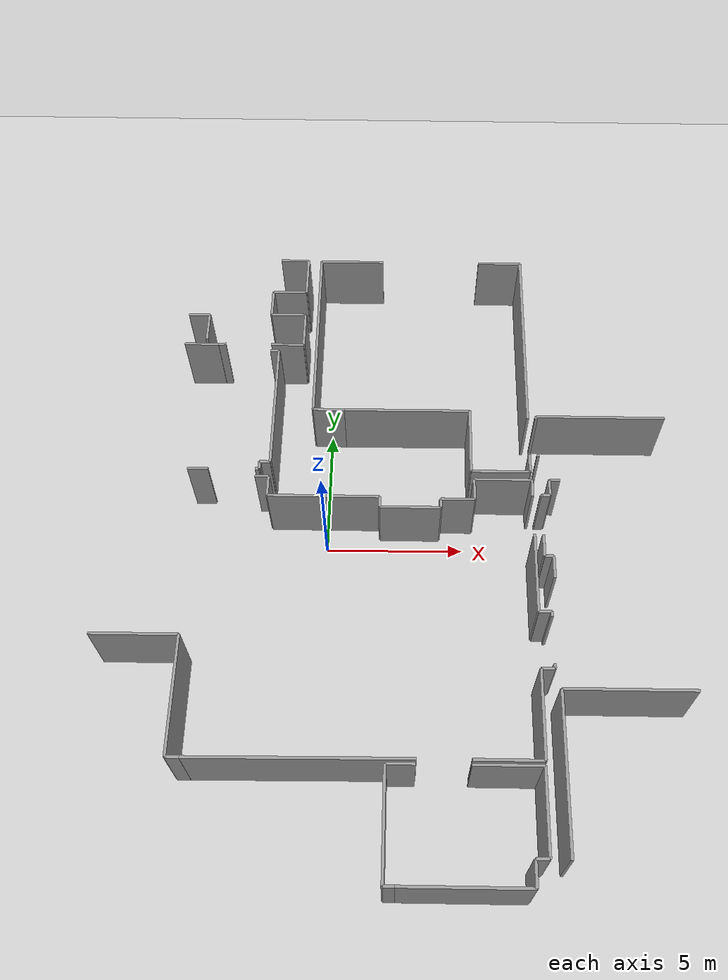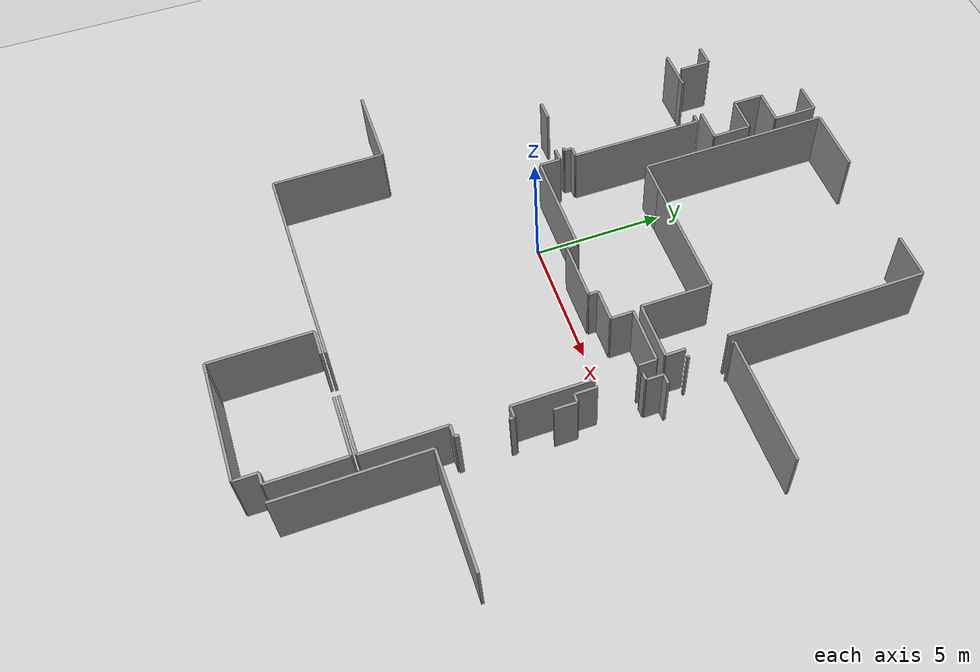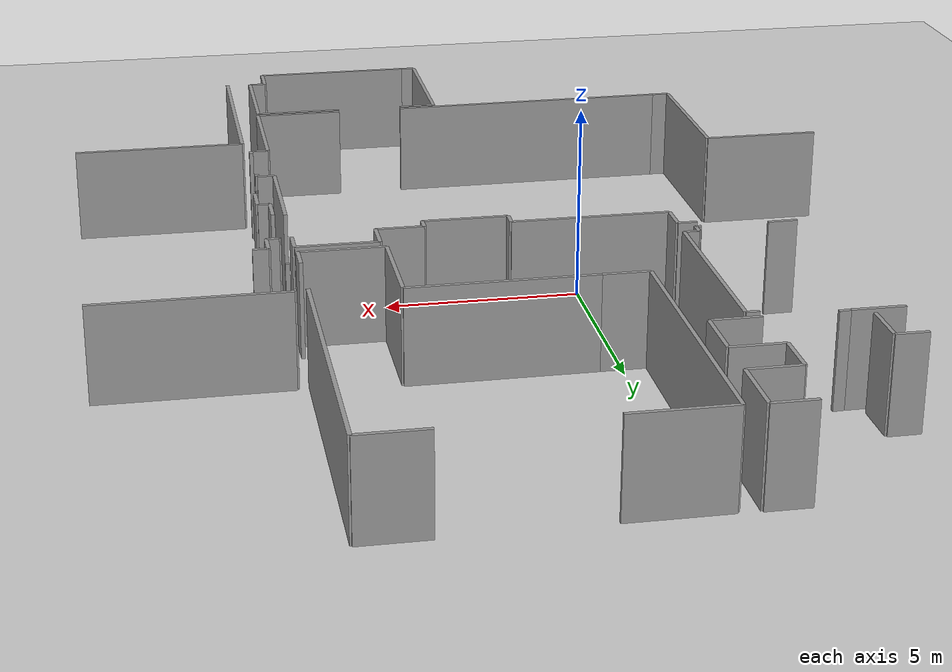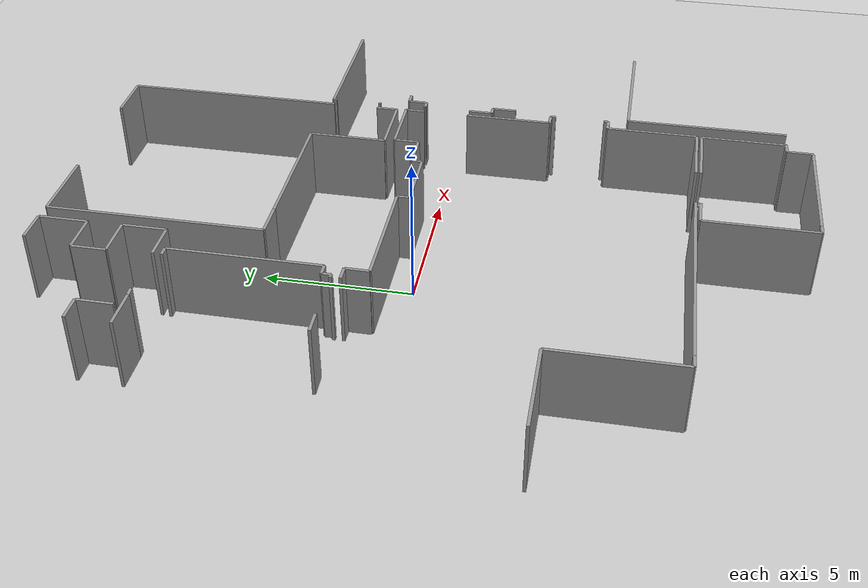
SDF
<sdf version="1.6">
 <world name="default">
  <model name="ground_plane">
   <static>1</static>
   <link name="link">
    <collision name="collision">
     <geometry><plane><normal>0 0 1</normal><size>100 100</size></plane></geometry>
     <surface><friction><ode><mu>100</mu><mu2>50</mu2></ode></friction></surface>
    </collision>
    <visual name="visual">
     <cast_shadows>0</cast_shadows>
     <geometry><plane><normal>0 0 1</normal><size>100 100</size></plane></geometry>
     <material>
      <script><uri>file://media/materials/scripts/gazebo.material</uri><name>Gazebo/Grey</name></script>
     </material>
    </visual>
   </link>
  </model>
  <model name="0510034690_Layout1">
   <static>1</static>
   <link name="Wall_120">
    <collision name="Wall_120_Collision">
     <geometry><box><size>1.31720917495 0.1 2.5</size></box></geometry>
     <pose>0.658604587474 0 1.25 0 0 0</pose>
    </collision>
    <visual name="Wall_120_Visual">
     <pose>0.658604587474 0 1.25 0 0 0</pose>
     <geometry><box><size>1.31720917495 0.1 2.5</size></box></geometry>
     <material>
      <script><uri>file://media/materials/scripts/gazebo.material</uri><name>Gazebo/Grey</name></script>
      <ambient>1 1 1 1</ambient>
     </material>
    </visual>
    <pose>51.6097744046 -5.07282116562 0 0 0 3.14159265359</pose>
   </link>
   <link name="Wall_123">
    <collision name="Wall_123_Collision">
     <geometry><box><size>1.20056344957 0.1 2.5</size></box></geometry>
     <pose>0.600281724785 0 1.25 0 0 0</pose>
    </collision>
    <visual name="Wall_123_Visual">
     <pose>0.600281724785 0 1.25 0 0 0</pose>
     <geometry><box><size>1.20056344957 0.1 2.5</size></box></geometry>
     <material>
      <script><uri>file://media/materials/scripts/gazebo.material</uri><name>Gazebo/Grey</name></script>
      <ambient>1 1 1 1</ambient>
     </material>
    </visual>
    <pose>51.1262017996 -4.81442552614 0 0 0 1.57079632679</pose>
   </link>
   <link name="Wall_124">
    <collision name="Wall_124_Collision">
     <geometry><box><size>0.816900444141 0.1 2.5</size></box></geometry>
     <pose>0.408450222071 0 1.25 0 0 0</pose>
    </collision>
    <visual name="Wall_124_Visual">
     <pose>0.408450222071 0 1.25 0 0 0</pose>
     <geometry><box><size>0.816900444141 0.1 2.5</size></box></geometry>
     <material>
      <script><uri>file://media/materials/scripts/gazebo.material</uri><name>Gazebo/Grey</name></script>
      <ambient>1 1 1 1</ambient>
     </material>
    </visual>
    <pose>51.1262017996 -3.61386207657 0 0 0 3.14159265359</pose>
   </link>
   <link name="Wall_128">
    <collision name="Wall_128_Collision">
     <geometry><box><size>1.10090742767 0.1 2.5</size></box></geometry>
     <pose>0.550453713835 0 1.25 0 0 0</pose>
    </collision>
    <visual name="Wall_128_Visual">
     <pose>0.550453713835 0 1.25 0 0 0</pose>
     <geometry><box><size>1.10090742767 0.1 2.5</size></box></geometry>
     <material>
      <script><uri>file://media/materials/scripts/gazebo.material</uri><name>Gazebo/Grey</name></script>
      <ambient>1 1 1 1</ambient>
     </material>
    </visual>
    <pose>53.8105749493 -0.746152275923 0 0 0 0.0</pose>
   </link>
   <link name="Wall_129">
    <collision name="Wall_129_Collision">
     <geometry><box><size>1.66068012065 0.1 2.5</size></box></geometry>
     <pose>0.830340060326 0 1.25 0 0 0</pose>
    </collision>
    <visual name="Wall_129_Visual">
     <pose>0.830340060326 0 1.25 0 0 0</pose>
     <geometry><box><size>1.66068012065 0.1 2.5</size></box></geometry>
     <material>
      <script><uri>file://media/materials/scripts/gazebo.material</uri><name>Gazebo/Grey</name></script>
      <ambient>1 1 1 1</ambient>
     </material>
    </visual>
    <pose>54.911482377 -0.746152275923 0 0 0 -1.57079632679</pose>
   </link>
   <link name="Wall_130">
    <collision name="Wall_130_Collision">
     <geometry><box><size>1.32304146122 0.1 2.5</size></box></geometry>
     <pose>0.661520730608 0 1.25 0 0 0</pose>
    </collision>
    <visual name="Wall_130_Visual">
     <pose>0.661520730608 0 1.25 0 0 0</pose>
     <geometry><box><size>1.32304146122 0.1 2.5</size></box></geometry>
     <material>
      <script><uri>file://media/materials/scripts/gazebo.material</uri><name>Gazebo/Grey</name></script>
      <ambient>1 1 1 1</ambient>
     </material>
    </visual>
    <pose>54.911482377 -2.40683239658 0 0 0 3.14159265359</pose>
   </link>
   <link name="Wall_131">
    <collision name="Wall_131_Collision">
     <geometry><box><size>1.15999102335 0.1 2.5</size></box></geometry>
     <pose>0.579995511675 0 1.25 0 0 0</pose>
    </collision>
    <visual name="Wall_131_Visual">
     <pose>0.579995511675 0 1.25 0 0 0</pose>
     <geometry><box><size>1.15999102335 0.1 2.5</size></box></geometry>
     <material>
      <script><uri>file://media/materials/scripts/gazebo.material</uri><name>Gazebo/Grey</name></script>
      <ambient>1 1 1 1</ambient>
     </material>
    </visual>
    <pose>53.5884409158 -2.40683239658 0 0 0 -1.57079632679</pose>
   </link>
   <link name="Wall_132">
    <collision name="Wall_132_Collision">
     <geometry><box><size>1.34218657484 0.1 2.5</size></box></geometry>
     <pose>0.671093287419 0 1.25 0 0 0</pose>
    </collision>
    <visual name="Wall_132_Visual">
     <pose>0.671093287419 0 1.25 0 0 0</pose>
     <geometry><box><size>1.34218657484 0.1 2.5</size></box></geometry>
     <material>
      <script><uri>file://media/materials/scripts/gazebo.material</uri><name>Gazebo/Grey</name></script>
      <ambient>1 1 1 1</ambient>
     </material>
    </visual>
    <pose>53.5884409158 -3.56682341993 0 0 0 0.0</pose>
   </link>
   <link name="Wall_133">
    <collision name="Wall_133_Collision">
     <geometry><box><size>1.48596511025 0.1 2.5</size></box></geometry>
     <pose>0.742982555125 0 1.25 0 0 0</pose>
    </collision>
    <visual name="Wall_133_Visual">
     <pose>0.742982555125 0 1.25 0 0 0</pose>
     <geometry><box><size>1.48596511025 0.1 2.5</size></box></geometry>
     <material>
      <script><uri>file://media/materials/scripts/gazebo.material</uri><name>Gazebo/Grey</name></script>
      <ambient>1 1 1 1</ambient>
     </material>
    </visual>
    <pose>54.9306274906 -3.56682341993 0 0 0 -1.57079632679</pose>
   </link>
   <link name="Wall_134">
    <collision name="Wall_134_Collision">
     <geometry><box><size>1.25584338029 0.1 2.5</size></box></geometry>
     <pose>0.627921690146 0 1.25 0 0 0</pose>
    </collision>
    <visual name="Wall_134_Visual">
     <pose>0.627921690146 0 1.25 0 0 0</pose>
     <geometry><box><size>1.25584338029 0.1 2.5</size></box></geometry>
     <material>
      <script><uri>file://media/materials/scripts/gazebo.material</uri><name>Gazebo/Grey</name></script>
      <ambient>1 1 1 1</ambient>
     </material>
    </visual>
    <pose>54.9306274906 -5.05278853018 0 0 0 3.14159265359</pose>
   </link>
   <link name="Wall_135">
    <collision name="Wall_135_Collision">
     <geometry><box><size>0.287748085083 0.1 2.5</size></box></geometry>
     <pose>0.143874042541 0 1.25 0 0 0</pose>
    </collision>
    <visual name="Wall_135_Visual">
     <pose>0.143874042541 0 1.25 0 0 0</pose>
     <geometry><box><size>0.287748085083 0.1 2.5</size></box></geometry>
     <material>
      <script><uri>file://media/materials/scripts/gazebo.material</uri><name>Gazebo/Grey</name></script>
      <ambient>1 1 1 1</ambient>
     </material>
    </visual>
    <pose>51.8968243201 -5.05278853018 0 0 0 -3.0719176354</pose>
   </link>
   <link name="Wall_141">
    <collision name="Wall_141_Collision">
     <geometry><box><size>0.333327839151 0.1 2.5</size></box></geometry>
     <pose>0.166663919575 0 1.25 0 0 0</pose>
    </collision>
    <visual name="Wall_141_Visual">
     <pose>0.166663919575 0 1.25 0 0 0</pose>
     <geometry><box><size>0.333327839151 0.1 2.5</size></box></geometry>
     <material>
      <script><uri>file://media/materials/scripts/gazebo.material</uri><name>Gazebo/Grey</name></script>
      <ambient>1 1 1 1</ambient>
     </material>
    </visual>
    <pose>53.6529764312 -5.35454595017 0 0 0 0.0</pose>
   </link>
   <link name="Wall_142">
    <collision name="Wall_142_Collision">
     <geometry><box><size>5.09716462135 0.1 2.5</size></box></geometry>
     <pose>2.54858231068 0 1.25 0 0 0</pose>
    </collision>
    <visual name="Wall_142_Visual">
     <pose>2.54858231068 0 1.25 0 0 0</pose>
     <geometry><box><size>5.09716462135 0.1 2.5</size></box></geometry>
     <material>
      <script><uri>file://media/materials/scripts/gazebo.material</uri><name>Gazebo/Grey</name></script>
      <ambient>1 1 1 1</ambient>
     </material>
    </visual>
    <pose>53.9863042704 -5.35454595017 0 0 0 -1.57079632679</pose>
   </link>
   <link name="Wall_143">
    <collision name="Wall_143_Collision">
     <geometry><box><size>0.385818415571 0.1 2.5</size></box></geometry>
     <pose>0.192909207785 0 1.25 0 0 0</pose>
    </collision>
    <visual name="Wall_143_Visual">
     <pose>0.192909207785 0 1.25 0 0 0</pose>
     <geometry><box><size>0.385818415571 0.1 2.5</size></box></geometry>
     <material>
      <script><uri>file://media/materials/scripts/gazebo.material</uri><name>Gazebo/Grey</name></script>
      <ambient>1 1 1 1</ambient>
     </material>
    </visual>
    <pose>53.9863042704 -10.4517105715 0 0 0 3.14159265359</pose>
   </link>
   <link name="Wall_144">
    <collision name="Wall_144_Collision">
     <geometry><box><size>0.308730805756 0.1 2.5</size></box></geometry>
     <pose>0.154365402878 0 1.25 0 0 0</pose>
    </collision>
    <visual name="Wall_144_Visual">
     <pose>0.154365402878 0 1.25 0 0 0</pose>
     <geometry><box><size>0.308730805756 0.1 2.5</size></box></geometry>
     <material>
      <script><uri>file://media/materials/scripts/gazebo.material</uri><name>Gazebo/Grey</name></script>
      <ambient>1 1 1 1</ambient>
     </material>
    </visual>
    <pose>53.6004858548 -10.4517105715 0 0 0 -1.57079632679</pose>
   </link>
   <link name="Wall_145">
    <collision name="Wall_145_Collision">
     <geometry><box><size>0.143398168916 0.1 2.5</size></box></geometry>
     <pose>0.0716990844578 0 1.25 0 0 0</pose>
    </collision>
    <visual name="Wall_145_Visual">
     <pose>0.0716990844578 0 1.25 0 0 0</pose>
     <geometry><box><size>0.143398168916 0.1 2.5</size></box></geometry>
     <material>
      <script><uri>file://media/materials/scripts/gazebo.material</uri><name>Gazebo/Grey</name></script>
      <ambient>1 1 1 1</ambient>
     </material>
    </visual>
    <pose>53.6004858548 -10.7604413773 0 0 0 3.14159265359</pose>
   </link>
   <link name="Wall_146">
    <collision name="Wall_146_Collision">
     <geometry><box><size>0.757602271947 0.1 2.5</size></box></geometry>
     <pose>0.378801135974 0 1.25 0 0 0</pose>
    </collision>
    <visual name="Wall_146_Visual">
     <pose>0.378801135974 0 1.25 0 0 0</pose>
     <geometry><box><size>0.757602271947 0.1 2.5</size></box></geometry>
     <material>
      <script><uri>file://media/materials/scripts/gazebo.material</uri><name>Gazebo/Grey</name></script>
      <ambient>1 1 1 1</ambient>
     </material>
    </visual>
    <pose>51.7285755402 -10.7604413773 0 0 0 -3.12067170238</pose>
   </link>
   <link name="Wall_147">
    <collision name="Wall_147_Collision">
     <geometry><box><size>0.468357945159 0.1 2.5</size></box></geometry>
     <pose>0.234178972579 0 1.25 0 0 0</pose>
    </collision>
    <visual name="Wall_147_Visual">
     <pose>0.234178972579 0 1.25 0 0 0</pose>
     <geometry><box><size>0.468357945159 0.1 2.5</size></box></geometry>
     <material>
      <script><uri>file://media/materials/scripts/gazebo.material</uri><name>Gazebo/Grey</name></script>
      <ambient>1 1 1 1</ambient>
     </material>
    </visual>
    <pose>51.8282315621 -21.6206655653 0 0 0 3.14159265359</pose>
   </link>
   <link name="Wall_148">
    <collision name="Wall_148_Collision">
     <geometry><box><size>4.24425614894 0.1 2.5</size></box></geometry>
     <pose>2.12212807447 0 1.25 0 0 0</pose>
    </collision>
    <visual name="Wall_148_Visual">
     <pose>2.12212807447 0 1.25 0 0 0</pose>
     <geometry><box><size>4.24425614894 0.1 2.5</size></box></geometry>
     <material>
      <script><uri>file://media/materials/scripts/gazebo.material</uri><name>Gazebo/Grey</name></script>
      <ambient>1 1 1 1</ambient>
     </material>
    </visual>
    <pose>51.3598736169 -21.6206655653 0 0 0 1.57079632679</pose>
   </link>
   <link name="Wall_149">
    <collision name="Wall_149_Collision">
     <geometry><box><size>3.08527943625 0.1 2.5</size></box></geometry>
     <pose>1.54263971812 0 1.25 0 0 0</pose>
    </collision>
    <visual name="Wall_149_Visual">
     <pose>1.54263971812 0 1.25 0 0 0</pose>
     <geometry><box><size>3.08527943625 0.1 2.5</size></box></geometry>
     <material>
      <script><uri>file://media/materials/scripts/gazebo.material</uri><name>Gazebo/Grey</name></script>
      <ambient>1 1 1 1</ambient>
     </material>
    </visual>
    <pose>51.3598736169 -17.3764094164 0 0 0 3.14159265359</pose>
   </link>
   <link name="Wall_152">
    <collision name="Wall_152_Collision">
     <geometry><box><size>0.500181941974 0.1 2.5</size></box></geometry>
     <pose>0.250090970987 0 1.25 0 0 0</pose>
    </collision>
    <visual name="Wall_152_Visual">
     <pose>0.250090970987 0 1.25 0 0 0</pose>
     <geometry><box><size>0.500181941974 0.1 2.5</size></box></geometry>
     <material>
      <script><uri>file://media/materials/scripts/gazebo.material</uri><name>Gazebo/Grey</name></script>
      <ambient>1 1 1 1</ambient>
     </material>
    </visual>
    <pose>53.4698933579 -11.0741169475 0 0 0 0.0</pose>
   </link>
   <link name="Wall_153">
    <collision name="Wall_153_Collision">
     <geometry><box><size>0.802446517301 0.1 2.5</size></box></geometry>
     <pose>0.40122325865 0 1.25 0 0 0</pose>
    </collision>
    <visual name="Wall_153_Visual">
     <pose>0.40122325865 0 1.25 0 0 0</pose>
     <geometry><box><size>0.802446517301 0.1 2.5</size></box></geometry>
     <material>
      <script><uri>file://media/materials/scripts/gazebo.material</uri><name>Gazebo/Grey</name></script>
      <ambient>1 1 1 1</ambient>
     </material>
    </visual>
    <pose>53.9700752999 -11.0741169475 0 0 0 -1.57079632679</pose>
   </link>
   <link name="Wall_154">
    <collision name="Wall_154_Collision">
     <geometry><box><size>4.08019140042 0.1 2.5</size></box></geometry>
     <pose>2.04009570021 0 1.25 0 0 0</pose>
    </collision>
    <visual name="Wall_154_Visual">
     <pose>2.04009570021 0 1.25 0 0 0</pose>
     <geometry><box><size>4.08019140042 0.1 2.5</size></box></geometry>
     <material>
      <script><uri>file://media/materials/scripts/gazebo.material</uri><name>Gazebo/Grey</name></script>
      <ambient>1 1 1 1</ambient>
     </material>
    </visual>
    <pose>53.9700752999 -11.8765634648 0 0 0 0.0</pose>
   </link>
   <link name="Wall_155">
    <collision name="Wall_155_Collision">
     <geometry><box><size>0.419290667201 0.1 2.5</size></box></geometry>
     <pose>0.2096453336 0 1.25 0 0 0</pose>
    </collision>
    <visual name="Wall_155_Visual">
     <pose>0.2096453336 0 1.25 0 0 0</pose>
     <geometry><box><size>0.419290667201 0.1 2.5</size></box></geometry>
     <material>
      <script><uri>file://media/materials/scripts/gazebo.material</uri><name>Gazebo/Grey</name></script>
      <ambient>1 1 1 1</ambient>
     </material>
    </visual>
    <pose>58.0502667003 -11.8765634648 0 0 0 -1.57079632679</pose>
   </link>
   <link name="Wall_156">
    <collision name="Wall_156_Collision">
     <geometry><box><size>2.19661651323 0.1 2.5</size></box></geometry>
     <pose>1.09830825662 0 1.25 0 0 0</pose>
    </collision>
    <visual name="Wall_156_Visual">
     <pose>1.09830825662 0 1.25 0 0 0</pose>
     <geometry><box><size>2.19661651323 0.1 2.5</size></box></geometry>
     <material>
      <script><uri>file://media/materials/scripts/gazebo.material</uri><name>Gazebo/Grey</name></script>
      <ambient>1 1 1 1</ambient>
     </material>
    </visual>
    <pose>58.0502667003 -12.295854132 0 0 0 0.0</pose>
   </link>
   <link name="Wall_157">
    <collision name="Wall_157_Collision">
     <geometry><box><size>0.359573127361 0.1 2.5</size></box></geometry>
     <pose>0.17978656368 0 1.25 0 0 0</pose>
    </collision>
    <visual name="Wall_157_Visual">
     <pose>0.17978656368 0 1.25 0 0 0</pose>
     <geometry><box><size>0.359573127361 0.1 2.5</size></box></geometry>
     <material>
      <script><uri>file://media/materials/scripts/gazebo.material</uri><name>Gazebo/Grey</name></script>
      <ambient>1 1 1 1</ambient>
     </material>
    </visual>
    <pose>60.2468832135 -12.295854132 0 0 0 1.57079632679</pose>
   </link>
   <link name="Wall_158">
    <collision name="Wall_158_Collision">
     <geometry><box><size>1.22693552661 0.1 2.5</size></box></geometry>
     <pose>0.613467763306 0 1.25 0 0 0</pose>
    </collision>
    <visual name="Wall_158_Visual">
     <pose>0.613467763306 0 1.25 0 0 0</pose>
     <geometry><box><size>1.22693552661 0.1 2.5</size></box></geometry>
     <material>
      <script><uri>file://media/materials/scripts/gazebo.material</uri><name>Gazebo/Grey</name></script>
      <ambient>1 1 1 1</ambient>
     </material>
    </visual>
    <pose>60.2468832135 -11.9362810046 0 0 0 0.0</pose>
   </link>
   <link name="Wall_159">
    <collision name="Wall_159_Collision">
     <geometry><box><size>0.851387006427 0.1 2.5</size></box></geometry>
     <pose>0.425693503213 0 1.25 0 0 0</pose>
    </collision>
    <visual name="Wall_159_Visual">
     <pose>0.425693503213 0 1.25 0 0 0</pose>
     <geometry><box><size>0.851387006427 0.1 2.5</size></box></geometry>
     <material>
      <script><uri>file://media/materials/scripts/gazebo.material</uri><name>Gazebo/Grey</name></script>
      <ambient>1 1 1 1</ambient>
     </material>
    </visual>
    <pose>61.4738187402 -11.9362810046 0 0 0 1.57079632679</pose>
   </link>
   <link name="Wall_160">
    <collision name="Wall_160_Collision">
     <geometry><box><size>2.0996230568 0.1 2.5</size></box></geometry>
     <pose>1.0498115284 0 1.25 0 0 0</pose>
    </collision>
    <visual name="Wall_160_Visual">
     <pose>1.0498115284 0 1.25 0 0 0</pose>
     <geometry><box><size>2.0996230568 0.1 2.5</size></box></geometry>
     <material>
      <script><uri>file://media/materials/scripts/gazebo.material</uri><name>Gazebo/Grey</name></script>
      <ambient>1 1 1 1</ambient>
     </material>
    </visual>
    <pose>61.4738187402 -11.0848939982 0 0 0 0.0</pose>
   </link>
   <link name="Wall_161">
    <collision name="Wall_161_Collision">
     <geometry><box><size>0.670712920923 0.1 2.5</size></box></geometry>
     <pose>0.335356460462 0 1.25 0 0 0</pose>
    </collision>
    <visual name="Wall_161_Visual">
     <pose>0.335356460462 0 1.25 0 0 0</pose>
     <geometry><box><size>0.670712920923 0.1 2.5</size></box></geometry>
     <material>
      <script><uri>file://media/materials/scripts/gazebo.material</uri><name>Gazebo/Grey</name></script>
      <ambient>1 1 1 1</ambient>
     </material>
    </visual>
    <pose>63.573441797 -11.0848939982 0 0 0 -1.57079632679</pose>
   </link>
   <link name="Wall_162">
    <collision name="Wall_162_Collision">
     <geometry><box><size>2.99792193104 0.1 2.5</size></box></geometry>
     <pose>1.49896096552 0 1.25 0 0 0</pose>
    </collision>
    <visual name="Wall_162_Visual">
     <pose>1.49896096552 0 1.25 0 0 0</pose>
     <geometry><box><size>2.99792193104 0.1 2.5</size></box></geometry>
     <material>
      <script><uri>file://media/materials/scripts/gazebo.material</uri><name>Gazebo/Grey</name></script>
      <ambient>1 1 1 1</ambient>
     </material>
    </visual>
    <pose>63.573441797 -13.3360297092 0 0 0 -1.57079632679</pose>
   </link>
   <link name="Wall_163">
    <collision name="Wall_163_Collision">
     <geometry><box><size>0.449466409201 0.1 2.5</size></box></geometry>
     <pose>0.2247332046 0 1.25 0 0 0</pose>
    </collision>
    <visual name="Wall_163_Visual">
     <pose>0.2247332046 0 1.25 0 0 0</pose>
     <geometry><box><size>0.449466409201 0.1 2.5</size></box></geometry>
     <material>
      <script><uri>file://media/materials/scripts/gazebo.material</uri><name>Gazebo/Grey</name></script>
      <ambient>1 1 1 1</ambient>
     </material>
    </visual>
    <pose>63.573441797 -16.3339516402 0 0 0 0.0</pose>
   </link>
   <link name="Wall_164">
    <collision name="Wall_164_Collision">
     <geometry><box><size>0.18498490579 0.1 2.5</size></box></geometry>
     <pose>0.0924924528948 0 1.25 0 0 0</pose>
    </collision>
    <visual name="Wall_164_Visual">
     <pose>0.0924924528948 0 1.25 0 0 0</pose>
     <geometry><box><size>0.18498490579 0.1 2.5</size></box></geometry>
     <material>
      <script><uri>file://media/materials/scripts/gazebo.material</uri><name>Gazebo/Grey</name></script>
      <ambient>1 1 1 1</ambient>
     </material>
    </visual>
    <pose>64.0229082062 -16.3339516402 0 0 0 -1.57079632679</pose>
   </link>
   <link name="Wall_165">
    <collision name="Wall_165_Collision">
     <geometry><box><size>0.16989703479 0.1 2.5</size></box></geometry>
     <pose>0.0849485173948 0 1.25 0 0 0</pose>
    </collision>
    <visual name="Wall_165_Visual">
     <pose>0.0849485173948 0 1.25 0 0 0</pose>
     <geometry><box><size>0.16989703479 0.1 2.5</size></box></geometry>
     <material>
      <script><uri>file://media/materials/scripts/gazebo.material</uri><name>Gazebo/Grey</name></script>
      <ambient>1 1 1 1</ambient>
     </material>
    </visual>
    <pose>64.0229082062 -18.2414896166 0 0 0 -1.57079632679</pose>
   </link>
   <link name="Wall_166">
    <collision name="Wall_166_Collision">
     <geometry><box><size>0.464681069033 0.1 2.5</size></box></geometry>
     <pose>0.232340534516 0 1.25 0 0 0</pose>
    </collision>
    <visual name="Wall_166_Visual">
     <pose>0.232340534516 0 1.25 0 0 0</pose>
     <geometry><box><size>0.464681069033 0.1 2.5</size></box></geometry>
     <material>
      <script><uri>file://media/materials/scripts/gazebo.material</uri><name>Gazebo/Grey</name></script>
      <ambient>1 1 1 1</ambient>
     </material>
    </visual>
    <pose>64.0229082062 -18.4113866514 0 0 0 3.14159265359</pose>
   </link>
   <link name="Wall_167">
    <collision name="Wall_167_Collision">
     <geometry><box><size>3.14588449791 0.1 2.5</size></box></geometry>
     <pose>1.57294224895 0 1.25 0 0 0</pose>
    </collision>
    <visual name="Wall_167_Visual">
     <pose>1.57294224895 0 1.25 0 0 0</pose>
     <geometry><box><size>3.14588449791 0.1 2.5</size></box></geometry>
     <material>
      <script><uri>file://media/materials/scripts/gazebo.material</uri><name>Gazebo/Grey</name></script>
      <ambient>1 1 1 1</ambient>
     </material>
    </visual>
    <pose>63.5582271371 -18.4113866514 0 0 0 -1.57079632679</pose>
   </link>
   <link name="Wall_168">
    <collision name="Wall_168_Collision">
     <geometry><box><size>2.35129888819 0.1 2.5</size></box></geometry>
     <pose>1.17564944409 0 1.25 0 0 0</pose>
    </collision>
    <visual name="Wall_168_Visual">
     <pose>1.17564944409 0 1.25 0 0 0</pose>
     <geometry><box><size>2.35129888819 0.1 2.5</size></box></geometry>
     <material>
      <script><uri>file://media/materials/scripts/gazebo.material</uri><name>Gazebo/Grey</name></script>
      <ambient>1 1 1 1</ambient>
     </material>
    </visual>
    <pose>63.5582271371 -21.5572711493 0 0 0 3.14159265359</pose>
   </link>
   <link name="Wall_169">
    <collision name="Wall_169_Collision">
     <geometry><box><size>7.59174600219 0.1 2.5</size></box></geometry>
     <pose>3.7958730011 0 1.25 0 0 0</pose>
    </collision>
    <visual name="Wall_169_Visual">
     <pose>3.7958730011 0 1.25 0 0 0</pose>
     <geometry><box><size>7.59174600219 0.1 2.5</size></box></geometry>
     <material>
      <script><uri>file://media/materials/scripts/gazebo.material</uri><name>Gazebo/Grey</name></script>
      <ambient>1 1 1 1</ambient>
     </material>
    </visual>
    <pose>59.419712874 -21.5572711493 0 0 0 -3.133242117</pose>
   </link>
   <link name="Wall_170">
    <collision name="Wall_170_Collision">
     <geometry><box><size>1.18103796945 0.1 2.5</size></box></geometry>
     <pose>0.590518984726 0 1.25 0 0 0</pose>
    </collision>
    <visual name="Wall_170_Visual">
     <pose>0.590518984726 0 1.25 0 0 0</pose>
     <geometry><box><size>1.18103796945 0.1 2.5</size></box></geometry>
     <material>
      <script><uri>file://media/materials/scripts/gazebo.material</uri><name>Gazebo/Grey</name></script>
      <ambient>1 1 1 1</ambient>
     </material>
    </visual>
    <pose>56.633021137 -8.09584728539 0 0 0 3.14159265359</pose>
   </link>
   <link name="Wall_171">
    <collision name="Wall_171_Collision">
     <geometry><box><size>7.31951926746 0.1 2.5</size></box></geometry>
     <pose>3.65975963373 0 1.25 0 0 0</pose>
    </collision>
    <visual name="Wall_171_Visual">
     <pose>3.65975963373 0 1.25 0 0 0</pose>
     <geometry><box><size>7.31951926746 0.1 2.5</size></box></geometry>
     <material>
      <script><uri>file://media/materials/scripts/gazebo.material</uri><name>Gazebo/Grey</name></script>
      <ambient>1 1 1 1</ambient>
     </material>
    </visual>
    <pose>55.4519831675 -8.09584728539 0 0 0 1.57079632679</pose>
   </link>
   <link name="Wall_172">
    <collision name="Wall_172_Collision">
     <geometry><box><size>2.50788309563 0.1 2.5</size></box></geometry>
     <pose>1.25394154781 0 1.25 0 0 0</pose>
    </collision>
    <visual name="Wall_172_Visual">
     <pose>1.25394154781 0 1.25 0 0 0</pose>
     <geometry><box><size>2.50788309563 0.1 2.5</size></box></geometry>
     <material>
      <script><uri>file://media/materials/scripts/gazebo.material</uri><name>Gazebo/Grey</name></script>
      <ambient>1 1 1 1</ambient>
     </material>
    </visual>
    <pose>55.4519831675 -0.776328017923 0 0 0 0.0</pose>
   </link>
   <link name="Wall_173">
    <collision name="Wall_173_Collision">
     <geometry><box><size>1.69136301798 0.1 2.5</size></box></geometry>
     <pose>0.84568150899 0 1.25 0 0 0</pose>
    </collision>
    <visual name="Wall_173_Visual">
     <pose>0.84568150899 0 1.25 0 0 0</pose>
     <geometry><box><size>1.69136301798 0.1 2.5</size></box></geometry>
     <material>
      <script><uri>file://media/materials/scripts/gazebo.material</uri><name>Gazebo/Grey</name></script>
      <ambient>1 1 1 1</ambient>
     </material>
    </visual>
    <pose>61.838336632 -0.776328017923 0 0 0 0.0</pose>
   </link>
   <link name="Wall_174">
    <collision name="Wall_174_Collision">
     <geometry><box><size>7.62254457578 0.1 2.5</size></box></geometry>
     <pose>3.81127228789 0 1.25 0 0 0</pose>
    </collision>
    <visual name="Wall_174_Visual">
     <pose>3.81127228789 0 1.25 0 0 0</pose>
     <geometry><box><size>7.62254457578 0.1 2.5</size></box></geometry>
     <material>
      <script><uri>file://media/materials/scripts/gazebo.material</uri><name>Gazebo/Grey</name></script>
      <ambient>1 1 1 1</ambient>
     </material>
    </visual>
    <pose>63.5296996499 -0.776328017923 0 0 0 -1.57079632679</pose>
   </link>
   <link name="Wall_175">
    <collision name="Wall_175_Collision">
     <geometry><box><size>0.741968244469 0.1 2.5</size></box></geometry>
     <pose>0.370984122235 0 1.25 0 0 0</pose>
    </collision>
    <visual name="Wall_175_Visual">
     <pose>0.370984122235 0 1.25 0 0 0</pose>
     <geometry><box><size>0.741968244469 0.1 2.5</size></box></geometry>
     <material>
      <script><uri>file://media/materials/scripts/gazebo.material</uri><name>Gazebo/Grey</name></script>
      <ambient>1 1 1 1</ambient>
     </material>
    </visual>
    <pose>63.5296996499 -9.99970838569 0 0 0 -1.57079632679</pose>
   </link>
   <link name="Wall_176">
    <collision name="Wall_176_Collision">
     <geometry><box><size>2.16618719357 0.1 2.5</size></box></geometry>
     <pose>1.08309359678 0 1.25 0 0 0</pose>
    </collision>
    <visual name="Wall_176_Visual">
     <pose>1.08309359678 0 1.25 0 0 0</pose>
     <geometry><box><size>2.16618719357 0.1 2.5</size></box></geometry>
     <material>
      <script><uri>file://media/materials/scripts/gazebo.material</uri><name>Gazebo/Grey</name></script>
      <ambient>1 1 1 1</ambient>
     </material>
    </visual>
    <pose>63.5296996499 -10.7416766302 0 0 0 3.14159265359</pose>
   </link>
   <link name="Wall_177">
    <collision name="Wall_177_Collision">
     <geometry><box><size>2.65977611628 0.1 2.5</size></box></geometry>
     <pose>1.32988805814 0 1.25 0 0 0</pose>
    </collision>
    <visual name="Wall_177_Visual">
     <pose>1.32988805814 0 1.25 0 0 0</pose>
     <geometry><box><size>2.65977611628 0.1 2.5</size></box></geometry>
     <material>
      <script><uri>file://media/materials/scripts/gazebo.material</uri><name>Gazebo/Grey</name></script>
      <ambient>1 1 1 1</ambient>
     </material>
    </visual>
    <pose>61.3635124564 -10.7416766302 0 0 0 1.57079632679</pose>
   </link>
   <link name="Wall_178">
    <collision name="Wall_178_Collision">
     <geometry><box><size>4.73051187879 0.1 2.5</size></box></geometry>
     <pose>2.3652559394 0 1.25 0 0 0</pose>
    </collision>
    <visual name="Wall_178_Visual">
     <pose>2.3652559394 0 1.25 0 0 0</pose>
     <geometry><box><size>4.73051187879 0.1 2.5</size></box></geometry>
     <material>
      <script><uri>file://media/materials/scripts/gazebo.material</uri><name>Gazebo/Grey</name></script>
      <ambient>1 1 1 1</ambient>
     </material>
    </visual>
    <pose>61.3635124564 -8.08190051388 0 0 0 -3.13864439089</pose>
   </link>
   <link name="Wall_179">
    <collision name="Wall_179_Collision">
     <geometry><box><size>0.373900265369 0.1 2.5</size></box></geometry>
     <pose>0.186950132685 0 1.25 0 0 0</pose>
    </collision>
    <visual name="Wall_179_Visual">
     <pose>0.186950132685 0 1.25 0 0 0</pose>
     <geometry><box><size>0.373900265369 0.1 2.5</size></box></geometry>
     <material>
      <script><uri>file://media/materials/scripts/gazebo.material</uri><name>Gazebo/Grey</name></script>
      <ambient>1 1 1 1</ambient>
     </material>
    </visual>
    <pose>58.7846276149 -25.5307063533 0 0 0 3.14159265359</pose>
   </link>
   <link name="Wall_180">
    <collision name="Wall_180_Collision">
     <geometry><box><size>3.80607394578 0.1 2.5</size></box></geometry>
     <pose>1.90303697289 0 1.25 0 0 0</pose>
    </collision>
    <visual name="Wall_180_Visual">
     <pose>1.90303697289 0 1.25 0 0 0</pose>
     <geometry><box><size>3.80607394578 0.1 2.5</size></box></geometry>
     <material>
      <script><uri>file://media/materials/scripts/gazebo.material</uri><name>Gazebo/Grey</name></script>
      <ambient>1 1 1 1</ambient>
     </material>
    </visual>
    <pose>58.4107273495 -25.5307063533 0 0 0 1.57079632679</pose>
   </link>
   <link name="Wall_181">
    <collision name="Wall_181_Collision">
     <geometry><box><size>0.987431423091 0.1 2.5</size></box></geometry>
     <pose>0.493715711545 0 1.25 0 0 0</pose>
    </collision>
    <visual name="Wall_181_Visual">
     <pose>0.493715711545 0 1.25 0 0 0</pose>
     <geometry><box><size>0.987431423091 0.1 2.5</size></box></geometry>
     <material>
      <script><uri>file://media/materials/scripts/gazebo.material</uri><name>Gazebo/Grey</name></script>
      <ambient>1 1 1 1</ambient>
     </material>
    </visual>
    <pose>58.4107273495 -21.7246324075 0 0 0 0.0</pose>
   </link>
   <link name="Wall_182">
    <collision name="Wall_182_Collision">
     <geometry><box><size>2.33329487405 0.1 2.5</size></box></geometry>
     <pose>1.16664743703 0 1.25 0 0 0</pose>
    </collision>
    <visual name="Wall_182_Visual">
     <pose>1.16664743703 0 1.25 0 0 0</pose>
     <geometry><box><size>2.33329487405 0.1 2.5</size></box></geometry>
     <material>
      <script><uri>file://media/materials/scripts/gazebo.material</uri><name>Gazebo/Grey</name></script>
      <ambient>1 1 1 1</ambient>
     </material>
    </visual>
    <pose>61.1975458754 -21.7246324075 0 0 0 0.0</pose>
   </link>
   <link name="Wall_183">
    <collision name="Wall_183_Collision">
     <geometry><box><size>2.91652350094 0.1 2.5</size></box></geometry>
     <pose>1.45826175047 0 1.25 0 0 0</pose>
    </collision>
    <visual name="Wall_183_Visual">
     <pose>1.45826175047 0 1.25 0 0 0</pose>
     <geometry><box><size>2.91652350094 0.1 2.5</size></box></geometry>
     <material>
      <script><uri>file://media/materials/scripts/gazebo.material</uri><name>Gazebo/Grey</name></script>
      <ambient>1 1 1 1</ambient>
     </material>
    </visual>
    <pose>63.5308407494 -21.7246324075 0 0 0 -1.57079632679</pose>
   </link>
   <link name="Wall_184">
    <collision name="Wall_184_Collision">
     <geometry><box><size>0.441098346293 0.1 2.5</size></box></geometry>
     <pose>0.220549173147 0 1.25 0 0 0</pose>
    </collision>
    <visual name="Wall_184_Visual">
     <pose>0.220549173147 0 1.25 0 0 0</pose>
     <geometry><box><size>0.441098346293 0.1 2.5</size></box></geometry>
     <material>
      <script><uri>file://media/materials/scripts/gazebo.material</uri><name>Gazebo/Grey</name></script>
      <ambient>1 1 1 1</ambient>
     </material>
    </visual>
    <pose>63.5308407494 -24.6411559084 0 0 0 3.14159265359</pose>
   </link>
   <link name="Wall_185">
    <collision name="Wall_185_Collision">
     <geometry><box><size>0.886507512872 0.1 2.5</size></box></geometry>
     <pose>0.443253756436 0 1.25 0 0 0</pose>
    </collision>
    <visual name="Wall_185_Visual">
     <pose>0.443253756436 0 1.25 0 0 0</pose>
     <geometry><box><size>0.886507512872 0.1 2.5</size></box></geometry>
     <material>
      <script><uri>file://media/materials/scripts/gazebo.material</uri><name>Gazebo/Grey</name></script>
      <ambient>1 1 1 1</ambient>
     </material>
    </visual>
    <pose>63.0897424031 -24.6411559084 0 0 0 -1.57079632679</pose>
   </link>
   <link name="Wall_186">
    <collision name="Wall_186_Collision">
     <geometry><box><size>4.30511586367 0.1 2.5</size></box></geometry>
     <pose>2.15255793183 0 1.25 0 0 0</pose>
    </collision>
    <visual name="Wall_186_Visual">
     <pose>2.15255793183 0 1.25 0 0 0</pose>
     <geometry><box><size>4.30511586367 0.1 2.5</size></box></geometry>
     <material>
      <script><uri>file://media/materials/scripts/gazebo.material</uri><name>Gazebo/Grey</name></script>
      <ambient>1 1 1 1</ambient>
     </material>
    </visual>
    <pose>63.0897424031 -25.5276634213 0 0 0 -3.14088583586</pose>
   </link>
   <link name="Wall_198">
    <collision name="Wall_198_Collision">
     <geometry><box><size>0.84568150899 0.1 2.5</size></box></geometry>
     <pose>0.422840754495 0 1.25 0 0 0</pose>
    </collision>
    <visual name="Wall_198_Visual">
     <pose>0.422840754495 0 1.25 0 0 0</pose>
     <geometry><box><size>0.84568150899 0.1 2.5</size></box></geometry>
     <material>
      <script><uri>file://media/materials/scripts/gazebo.material</uri><name>Gazebo/Grey</name></script>
      <ambient>1 1 1 1</ambient>
     </material>
    </visual>
    <pose>64.2004125709 -15.0362679454 0 0 0 1.57079632679</pose>
   </link>
   <link name="Wall_199">
    <collision name="Wall_199_Collision">
     <geometry><box><size>0.315450613848 0.1 2.5</size></box></geometry>
     <pose>0.157725306924 0 1.25 0 0 0</pose>
    </collision>
    <visual name="Wall_199_Visual">
     <pose>0.157725306924 0 1.25 0 0 0</pose>
     <geometry><box><size>0.315450613848 0.1 2.5</size></box></geometry>
     <material>
      <script><uri>file://media/materials/scripts/gazebo.material</uri><name>Gazebo/Grey</name></script>
      <ambient>1 1 1 1</ambient>
     </material>
    </visual>
    <pose>64.2004125709 -14.1905864364 0 0 0 3.14159265359</pose>
   </link>
   <link name="Wall_200">
    <collision name="Wall_200_Collision">
     <geometry><box><size>0.835411613603 0.1 2.5</size></box></geometry>
     <pose>0.417705806802 0 1.25 0 0 0</pose>
    </collision>
    <visual name="Wall_200_Visual">
     <pose>0.417705806802 0 1.25 0 0 0</pose>
     <geometry><box><size>0.835411613603 0.1 2.5</size></box></geometry>
     <material>
      <script><uri>file://media/materials/scripts/gazebo.material</uri><name>Gazebo/Grey</name></script>
      <ambient>1 1 1 1</ambient>
     </material>
    </visual>
    <pose>63.884961957 -14.1905864364 0 0 0 1.57079632679</pose>
   </link>
   <link name="Wall_201">
    <collision name="Wall_201_Collision">
     <geometry><box><size>0.0479261784705 0.1 2.5</size></box></geometry>
     <pose>0.0239630892352 0 1.25 0 0 0</pose>
    </collision>
    <visual name="Wall_201_Visual">
     <pose>0.0239630892352 0 1.25 0 0 0</pose>
     <geometry><box><size>0.0479261784705 0.1 2.5</size></box></geometry>
     <material>
      <script><uri>file://media/materials/scripts/gazebo.material</uri><name>Gazebo/Grey</name></script>
      <ambient>1 1 1 1</ambient>
     </material>
    </visual>
    <pose>63.884961957 -11.7733573556 0 0 0 1.57079632679</pose>
   </link>
   <link name="Wall_202">
    <collision name="Wall_202_Collision">
     <geometry><box><size>0.316338135672 0.1 2.5</size></box></geometry>
     <pose>0.158169067836 0 1.25 0 0 0</pose>
    </collision>
    <visual name="Wall_202_Visual">
     <pose>0.158169067836 0 1.25 0 0 0</pose>
     <geometry><box><size>0.316338135672 0.1 2.5</size></box></geometry>
     <material>
      <script><uri>file://media/materials/scripts/gazebo.material</uri><name>Gazebo/Grey</name></script>
      <ambient>1 1 1 1</ambient>
     </material>
    </visual>
    <pose>63.884961957 -11.7254311771 0 0 0 0.0</pose>
   </link>
   <link name="Wall_203">
    <collision name="Wall_203_Collision">
     <geometry><box><size>0.64231222257 0.1 2.5</size></box></geometry>
     <pose>0.321156111285 0 1.25 0 0 0</pose>
    </collision>
    <visual name="Wall_203_Visual">
     <pose>0.321156111285 0 1.25 0 0 0</pose>
     <geometry><box><size>0.64231222257 0.1 2.5</size></box></geometry>
     <material>
      <script><uri>file://media/materials/scripts/gazebo.material</uri><name>Gazebo/Grey</name></script>
      <ambient>1 1 1 1</ambient>
     </material>
    </visual>
    <pose>64.2013000927 -11.7254311771 0 0 0 1.57079632679</pose>
   </link>
   <link name="Wall_204">
    <collision name="Wall_204_Collision">
     <geometry><box><size>0.393045378991 0.1 2.5</size></box></geometry>
     <pose>0.196522689495 0 1.25 0 0 0</pose>
    </collision>
    <visual name="Wall_204_Visual">
     <pose>0.196522689495 0 1.25 0 0 0</pose>
     <geometry><box><size>0.393045378991 0.1 2.5</size></box></geometry>
     <material>
      <script><uri>file://media/materials/scripts/gazebo.material</uri><name>Gazebo/Grey</name></script>
      <ambient>1 1 1 1</ambient>
     </material>
    </visual>
    <pose>64.2013000927 -11.0831189546 0 0 0 0.0</pose>
   </link>
   <link name="Wall_209">
    <collision name="Wall_209_Collision">
     <geometry><box><size>0.0917951143192 0.1 2.5</size></box></geometry>
     <pose>0.0458975571596 0 1.25 0 0 0</pose>
    </collision>
    <visual name="Wall_209_Visual">
     <pose>0.0458975571596 0 1.25 0 0 0</pose>
     <geometry><box><size>0.0917951143192 0.1 2.5</size></box></geometry>
     <material>
      <script><uri>file://media/materials/scripts/gazebo.material</uri><name>Gazebo/Grey</name></script>
      <ambient>1 1 1 1</ambient>
     </material>
    </visual>
    <pose>63.8478128293 -10.0831354371 0 0 0 1.57079632679</pose>
   </link>
   <link name="Wall_210">
    <collision name="Wall_210_Collision">
     <geometry><box><size>0.116645725378 0.1 2.5</size></box></geometry>
     <pose>0.058322862689 0 1.25 0 0 0</pose>
    </collision>
    <visual name="Wall_210_Visual">
     <pose>0.058322862689 0 1.25 0 0 0</pose>
     <geometry><box><size>0.116645725378 0.1 2.5</size></box></geometry>
     <material>
      <script><uri>file://media/materials/scripts/gazebo.material</uri><name>Gazebo/Grey</name></script>
      <ambient>1 1 1 1</ambient>
     </material>
    </visual>
    <pose>63.8478128293 -8.41662303018 0 0 0 1.57079632679</pose>
   </link>
   <link name="Wall_211">
    <collision name="Wall_211_Collision">
     <geometry><box><size>4.8210185454 0.1 2.5</size></box></geometry>
     <pose>2.4105092727 0 1.25 0 0 0</pose>
    </collision>
    <visual name="Wall_211_Visual">
     <pose>2.4105092727 0 1.25 0 0 0</pose>
     <geometry><box><size>4.8210185454 0.1 2.5</size></box></geometry>
     <material>
      <script><uri>file://media/materials/scripts/gazebo.material</uri><name>Gazebo/Grey</name></script>
      <ambient>1 1 1 1</ambient>
     </material>
    </visual>
    <pose>63.8478128293 -8.2999773048 0 0 0 0.0</pose>
   </link>
   <link name="Wall_234">
    <collision name="Wall_234_Collision">
     <geometry><box><size>5.56602972184 0.1 2.5</size></box></geometry>
     <pose>2.78301486092 0 1.25 0 0 0</pose>
    </collision>
    <visual name="Wall_234_Visual">
     <pose>2.78301486092 0 1.25 0 0 0</pose>
     <geometry><box><size>5.56602972184 0.1 2.5</size></box></geometry>
     <material>
      <script><uri>file://media/materials/scripts/gazebo.material</uri><name>Gazebo/Grey</name></script>
      <ambient>1 1 1 1</ambient>
     </material>
    </visual>
    <pose>64.2054841241 -24.6785586138 0 0 0 1.57079632679</pose>
   </link>
   <link name="Wall_235">
    <collision name="Wall_235_Collision">
     <geometry><box><size>4.55171906638 0.1 2.5</size></box></geometry>
     <pose>2.27585953319 0 1.25 0 0 0</pose>
    </collision>
    <visual name="Wall_235_Visual">
     <pose>2.27585953319 0 1.25 0 0 0</pose>
     <geometry><box><size>4.55171906638 0.1 2.5</size></box></geometry>
     <material>
      <script><uri>file://media/materials/scripts/gazebo.material</uri><name>Gazebo/Grey</name></script>
      <ambient>1 1 1 1</ambient>
     </material>
    </visual>
    <pose>64.2054841241 -19.112528892 0 0 0 0.0</pose>
   </link>
   <pose>-56.1 12.7807063533 0 0 0 0</pose>
  </model>
 </world>
</sdf>
